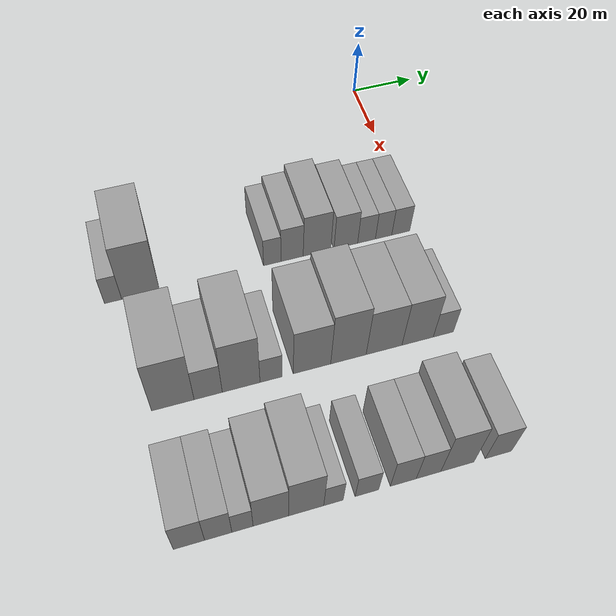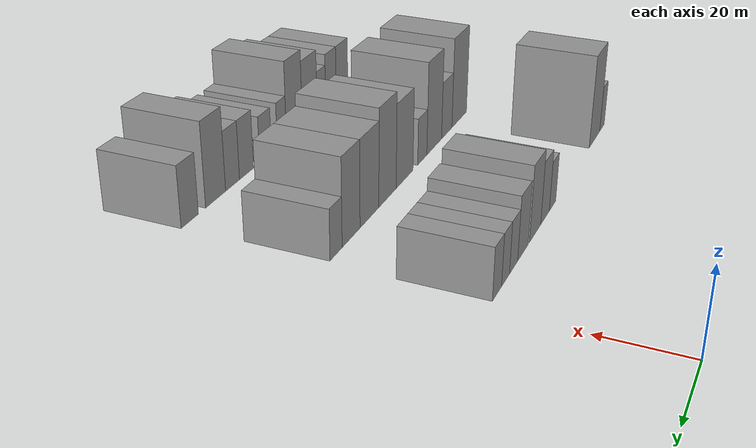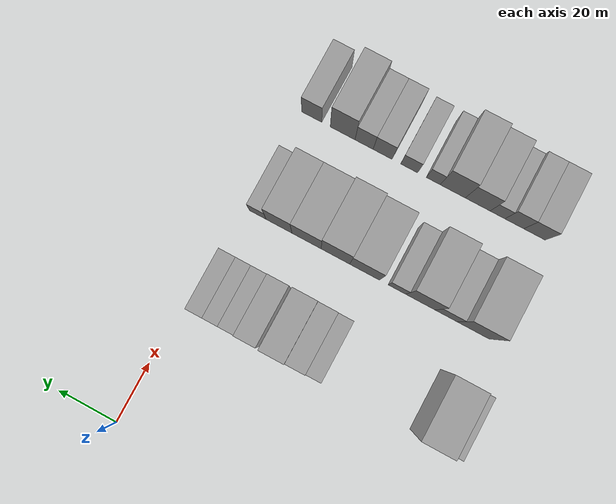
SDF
<sdf version="1.6">
 <world name="default">
  <model name="building_32">
   <static>1</static>
   <pose>50.0000 -91.1414 0 0.000000 0.000000 0.000000</pose>
   <link name="link">
    <pose>0 0 6.00 0 0 0</pose>
    <collision name="collision"><geometry><box><size>20.0000 4.8150 12.0000</size></box></geometry></collision>
    <visual name="visual">
     <cast_shadows>0</cast_shadows>
     <geometry><box><size>20.0000 4.8150 12.0000</size></box></geometry>
     <material>
      <script>
       <uri>model://grey_wall/materials/scripts</uri>
       <uri>model://grey_wall/materials/textures</uri>
       <name>vrc/grey_wall</name>
      </script>
     </material>
    </visual>
   </link>
  </model>
  <model name="building_33">
   <static>1</static>
   <pose>50.0000 -83.4060 0 0.000000 0.000000 0.000000</pose>
   <link name="link">
    <pose>0 0 12.00 0 0 0</pose>
    <collision name="collision"><geometry><box><size>20.0000 10.6557 24.0000</size></box></geometry></collision>
    <visual name="visual">
     <cast_shadows>0</cast_shadows>
     <geometry><box><size>20.0000 10.6557 24.0000</size></box></geometry>
     <material>
      <script>
       <uri>model://grey_wall/materials/scripts</uri>
       <uri>model://grey_wall/materials/textures</uri>
       <name>vrc/grey_wall</name>
      </script>
     </material>
    </visual>
   </link>
  </model>
  <model name="building_34">
   <static>1</static>
   <pose>50.0000 -45.3212 0 0.000000 0.000000 0.000000</pose>
   <link name="link">
    <pose>0 0 6.00 0 0 0</pose>
    <collision name="collision"><geometry><box><size>20.0000 5.1713 12.0000</size></box></geometry></collision>
    <visual name="visual">
     <cast_shadows>0</cast_shadows>
     <geometry><box><size>20.0000 5.1713 12.0000</size></box></geometry>
     <material>
      <script>
       <uri>model://grey_wall/materials/scripts</uri>
       <uri>model://grey_wall/materials/textures</uri>
       <name>vrc/grey_wall</name>
      </script>
     </material>
    </visual>
   </link>
  </model>
  <model name="building_35">
   <static>1</static>
   <pose>50.0000 -39.4127 0 0.000000 0.000000 0.000000</pose>
   <link name="link">
    <pose>0 0 7.50 0 0 0</pose>
    <collision name="collision"><geometry><box><size>20.0000 6.6456 15.0000</size></box></geometry></collision>
    <visual name="visual">
     <cast_shadows>0</cast_shadows>
     <geometry><box><size>20.0000 6.6456 15.0000</size></box></geometry>
     <material>
      <script>
       <uri>model://grey_wall/materials/scripts</uri>
       <uri>model://grey_wall/materials/textures</uri>
       <name>vrc/grey_wall</name>
      </script>
     </material>
    </visual>
   </link>
  </model>
  <model name="building_36">
   <static>1</static>
   <pose>50.0000 -31.9131 0 0.000000 0.000000 0.000000</pose>
   <link name="link">
    <pose>0 0 9.00 0 0 0</pose>
    <collision name="collision"><geometry><box><size>20.0000 8.3536 18.0000</size></box></geometry></collision>
    <visual name="visual">
     <cast_shadows>0</cast_shadows>
     <geometry><box><size>20.0000 8.3536 18.0000</size></box></geometry>
     <material>
      <script>
       <uri>model://grey_wall/materials/scripts</uri>
       <uri>model://grey_wall/materials/textures</uri>
       <name>vrc/grey_wall</name>
      </script>
     </material>
    </visual>
   </link>
  </model>
  <model name="building_37">
   <static>1</static>
   <pose>50.0000 -23.1117 0 0.000000 0.000000 0.000000</pose>
   <link name="link">
    <pose>0 0 7.50 0 0 0</pose>
    <collision name="collision"><geometry><box><size>20.0000 7.2491 15.0000</size></box></geometry></collision>
    <visual name="visual">
     <cast_shadows>0</cast_shadows>
     <geometry><box><size>20.0000 7.2491 15.0000</size></box></geometry>
     <material>
      <script>
       <uri>model://grey_wall/materials/scripts</uri>
       <uri>model://grey_wall/materials/textures</uri>
       <name>vrc/grey_wall</name>
      </script>
     </material>
    </visual>
   </link>
  </model>
  <model name="building_38">
   <static>1</static>
   <pose>50.0000 -16.7478 0 0.000000 0.000000 0.000000</pose>
   <link name="link">
    <pose>0 0 6.00 0 0 0</pose>
    <collision name="collision"><geometry><box><size>20.0000 5.4787 12.0000</size></box></geometry></collision>
    <visual name="visual">
     <cast_shadows>0</cast_shadows>
     <geometry><box><size>20.0000 5.4787 12.0000</size></box></geometry>
     <material>
      <script>
       <uri>model://grey_wall/materials/scripts</uri>
       <uri>model://grey_wall/materials/textures</uri>
       <name>vrc/grey_wall</name>
      </script>
     </material>
    </visual>
   </link>
  </model>
  <model name="building_39">
   <static>1</static>
   <pose>50.0000 -11.4639 0 0.000000 0.000000 0.000000</pose>
   <link name="link">
    <pose>0 0 6.00 0 0 0</pose>
    <collision name="collision"><geometry><box><size>20.0000 5.0892 12.0000</size></box></geometry></collision>
    <visual name="visual">
     <cast_shadows>0</cast_shadows>
     <geometry><box><size>20.0000 5.0892 12.0000</size></box></geometry>
     <material>
      <script>
       <uri>model://grey_wall/materials/scripts</uri>
       <uri>model://grey_wall/materials/textures</uri>
       <name>vrc/grey_wall</name>
      </script>
     </material>
    </visual>
   </link>
  </model>
  <model name="building_40">
   <static>1</static>
   <pose>50.0000 -6.0964 0 0.000000 0.000000 0.000000</pose>
   <link name="link">
    <pose>0 0 6.00 0 0 0</pose>
    <collision name="collision"><geometry><box><size>20.0000 5.6457 12.0000</size></box></geometry></collision>
    <visual name="visual">
     <cast_shadows>0</cast_shadows>
     <geometry><box><size>20.0000 5.6457 12.0000</size></box></geometry>
     <material>
      <script>
       <uri>model://grey_wall/materials/scripts</uri>
       <uri>model://grey_wall/materials/textures</uri>
       <name>vrc/grey_wall</name>
      </script>
     </material>
    </visual>
   </link>
  </model>
  <model name="building_110">
   <static>1</static>
   <pose>85.0000 -81.3385 0 0.000000 0.000000 0.000000</pose>
   <link name="link">
    <pose>0 0 12.00 0 0 0</pose>
    <collision name="collision"><geometry><box><size>20.0000 11.0445 24.0000</size></box></geometry></collision>
    <visual name="visual">
     <cast_shadows>0</cast_shadows>
     <geometry><box><size>20.0000 11.0445 24.0000</size></box></geometry>
     <material>
      <script>
       <uri>model://grey_wall/materials/scripts</uri>
       <uri>model://grey_wall/materials/textures</uri>
       <name>vrc/grey_wall</name>
      </script>
     </material>
    </visual>
   </link>
  </model>
  <model name="building_111">
   <static>1</static>
   <pose>85.0000 -72.1030 0 0.000000 0.000000 0.000000</pose>
   <link name="link">
    <pose>0 0 7.50 0 0 0</pose>
    <collision name="collision"><geometry><box><size>20.0000 7.4266 15.0000</size></box></geometry></collision>
    <visual name="visual">
     <cast_shadows>0</cast_shadows>
     <geometry><box><size>20.0000 7.4266 15.0000</size></box></geometry>
     <material>
      <script>
       <uri>model://grey_wall/materials/scripts</uri>
       <uri>model://grey_wall/materials/textures</uri>
       <name>vrc/grey_wall</name>
      </script>
     </material>
    </visual>
   </link>
  </model>
  <model name="building_112">
   <static>1</static>
   <pose>85.0000 -63.3589 0 0.000000 0.000000 0.000000</pose>
   <link name="link">
    <pose>0 0 12.00 0 0 0</pose>
    <collision name="collision"><geometry><box><size>20.0000 10.0616 24.0000</size></box></geometry></collision>
    <visual name="visual">
     <cast_shadows>0</cast_shadows>
     <geometry><box><size>20.0000 10.0616 24.0000</size></box></geometry>
     <material>
      <script>
       <uri>model://grey_wall/materials/scripts</uri>
       <uri>model://grey_wall/materials/textures</uri>
       <name>vrc/grey_wall</name>
      </script>
     </material>
    </visual>
   </link>
  </model>
  <model name="building_113">
   <static>1</static>
   <pose>85.0000 -55.3316 0 0.000000 0.000000 0.000000</pose>
   <link name="link">
    <pose>0 0 6.00 0 0 0</pose>
    <collision name="collision"><geometry><box><size>20.0000 5.9931 12.0000</size></box></geometry></collision>
    <visual name="visual">
     <cast_shadows>0</cast_shadows>
     <geometry><box><size>20.0000 5.9931 12.0000</size></box></geometry>
     <material>
      <script>
       <uri>model://grey_wall/materials/scripts</uri>
       <uri>model://grey_wall/materials/textures</uri>
       <name>vrc/grey_wall</name>
      </script>
     </material>
    </visual>
   </link>
  </model>
  <model name="building_114">
   <static>1</static>
   <pose>85.0000 -44.1902 0 0.000000 0.000000 0.000000</pose>
   <link name="link">
    <pose>0 0 10.50 0 0 0</pose>
    <collision name="collision"><geometry><box><size>20.0000 10.2897 21.0000</size></box></geometry></collision>
    <visual name="visual">
     <cast_shadows>0</cast_shadows>
     <geometry><box><size>20.0000 10.2897 21.0000</size></box></geometry>
     <material>
      <script>
       <uri>model://grey_wall/materials/scripts</uri>
       <uri>model://grey_wall/materials/textures</uri>
       <name>vrc/grey_wall</name>
      </script>
     </material>
    </visual>
   </link>
  </model>
  <model name="building_115">
   <static>1</static>
   <pose>85.0000 -34.1086 0 0.000000 0.000000 0.000000</pose>
   <link name="link">
    <pose>0 0 12.00 0 0 0</pose>
    <collision name="collision"><geometry><box><size>20.0000 9.8735 24.0000</size></box></geometry></collision>
    <visual name="visual">
     <cast_shadows>0</cast_shadows>
     <geometry><box><size>20.0000 9.8735 24.0000</size></box></geometry>
     <material>
      <script>
       <uri>model://grey_wall/materials/scripts</uri>
       <uri>model://grey_wall/materials/textures</uri>
       <name>vrc/grey_wall</name>
      </script>
     </material>
    </visual>
   </link>
  </model>
  <model name="building_116">
   <static>1</static>
   <pose>85.0000 -24.1066 0 0.000000 0.000000 0.000000</pose>
   <link name="link">
    <pose>0 0 10.50 0 0 0</pose>
    <collision name="collision"><geometry><box><size>20.0000 10.1305 21.0000</size></box></geometry></collision>
    <visual name="visual">
     <cast_shadows>0</cast_shadows>
     <geometry><box><size>20.0000 10.1305 21.0000</size></box></geometry>
     <material>
      <script>
       <uri>model://grey_wall/materials/scripts</uri>
       <uri>model://grey_wall/materials/textures</uri>
       <name>vrc/grey_wall</name>
      </script>
     </material>
    </visual>
   </link>
  </model>
  <model name="building_117">
   <static>1</static>
   <pose>85.0000 -14.5325 0 0.000000 0.000000 0.000000</pose>
   <link name="link">
    <pose>0 0 10.50 0 0 0</pose>
    <collision name="collision"><geometry><box><size>20.0000 9.0177 21.0000</size></box></geometry></collision>
    <visual name="visual">
     <cast_shadows>0</cast_shadows>
     <geometry><box><size>20.0000 9.0177 21.0000</size></box></geometry>
     <material>
      <script>
       <uri>model://grey_wall/materials/scripts</uri>
       <uri>model://grey_wall/materials/textures</uri>
       <name>vrc/grey_wall</name>
      </script>
     </material>
    </visual>
   </link>
  </model>
  <model name="building_118">
   <static>1</static>
   <pose>85.0000 -7.1090 0 0.000000 0.000000 0.000000</pose>
   <link name="link">
    <pose>0 0 6.00 0 0 0</pose>
    <collision name="collision"><geometry><box><size>20.0000 5.8294 12.0000</size></box></geometry></collision>
    <visual name="visual">
     <cast_shadows>0</cast_shadows>
     <geometry><box><size>20.0000 5.8294 12.0000</size></box></geometry>
     <material>
      <script>
       <uri>model://grey_wall/materials/scripts</uri>
       <uri>model://grey_wall/materials/textures</uri>
       <name>vrc/grey_wall</name>
      </script>
     </material>
    </visual>
   </link>
  </model>
  <model name="building_182">
   <static>1</static>
   <pose>120.0000 -84.6310 0 0.000000 0.000000 0.000000</pose>
   <link name="link">
    <pose>0 0 7.50 0 0 0</pose>
    <collision name="collision"><geometry><box><size>20.0000 7.3683 15.0000</size></box></geometry></collision>
    <visual name="visual">
     <cast_shadows>0</cast_shadows>
     <geometry><box><size>20.0000 7.3683 15.0000</size></box></geometry>
     <material>
      <script>
       <uri>model://grey_wall/materials/scripts</uri>
       <uri>model://grey_wall/materials/textures</uri>
       <name>vrc/grey_wall</name>
      </script>
     </material>
    </visual>
   </link>
  </model>
  <model name="building_183">
   <static>1</static>
   <pose>120.0000 -77.7113 0 0.000000 0.000000 0.000000</pose>
   <link name="link">
    <pose>0 0 7.50 0 0 0</pose>
    <collision name="collision"><geometry><box><size>20.0000 6.4711 15.0000</size></box></geometry></collision>
    <visual name="visual">
     <cast_shadows>0</cast_shadows>
     <geometry><box><size>20.0000 6.4711 15.0000</size></box></geometry>
     <material>
      <script>
       <uri>model://grey_wall/materials/scripts</uri>
       <uri>model://grey_wall/materials/textures</uri>
       <name>vrc/grey_wall</name>
      </script>
     </material>
    </visual>
   </link>
  </model>
  <model name="building_184">
   <static>1</static>
   <pose>120.0000 -71.9233 0 0.000000 0.000000 0.000000</pose>
   <link name="link">
    <pose>0 0 6.00 0 0 0</pose>
    <collision name="collision"><geometry><box><size>20.0000 5.1049 12.0000</size></box></geometry></collision>
    <visual name="visual">
     <cast_shadows>0</cast_shadows>
     <geometry><box><size>20.0000 5.1049 12.0000</size></box></geometry>
     <material>
      <script>
       <uri>model://grey_wall/materials/scripts</uri>
       <uri>model://grey_wall/materials/textures</uri>
       <name>vrc/grey_wall</name>
      </script>
     </material>
    </visual>
   </link>
  </model>
  <model name="building_185">
   <static>1</static>
   <pose>120.0000 -65.0816 0 0.000000 0.000000 0.000000</pose>
   <link name="link">
    <pose>0 0 9.00 0 0 0</pose>
    <collision name="collision"><geometry><box><size>20.0000 8.5783 18.0000</size></box></geometry></collision>
    <visual name="visual">
     <cast_shadows>0</cast_shadows>
     <geometry><box><size>20.0000 8.5783 18.0000</size></box></geometry>
     <material>
      <script>
       <uri>model://grey_wall/materials/scripts</uri>
       <uri>model://grey_wall/materials/textures</uri>
       <name>vrc/grey_wall</name>
      </script>
     </material>
    </visual>
   </link>
  </model>
  <model name="building_186">
   <static>1</static>
   <pose>120.0000 -56.4426 0 0.000000 0.000000 0.000000</pose>
   <link name="link">
    <pose>0 0 10.50 0 0 0</pose>
    <collision name="collision"><geometry><box><size>20.0000 8.6998 21.0000</size></box></geometry></collision>
    <visual name="visual">
     <cast_shadows>0</cast_shadows>
     <geometry><box><size>20.0000 8.6998 21.0000</size></box></geometry>
     <material>
      <script>
       <uri>model://grey_wall/materials/scripts</uri>
       <uri>model://grey_wall/materials/textures</uri>
       <name>vrc/grey_wall</name>
      </script>
     </material>
    </visual>
   </link>
  </model>
  <model name="building_187">
   <static>1</static>
   <pose>120.0000 -49.6678 0 0.000000 0.000000 0.000000</pose>
   <link name="link">
    <pose>0 0 6.00 0 0 0</pose>
    <collision name="collision"><geometry><box><size>20.0000 4.8497 12.0000</size></box></geometry></collision>
    <visual name="visual">
     <cast_shadows>0</cast_shadows>
     <geometry><box><size>20.0000 4.8497 12.0000</size></box></geometry>
     <material>
      <script>
       <uri>model://grey_wall/materials/scripts</uri>
       <uri>model://grey_wall/materials/textures</uri>
       <name>vrc/grey_wall</name>
      </script>
     </material>
    </visual>
   </link>
  </model>
  <model name="building_188">
   <static>1</static>
   <pose>120.0000 -41.2669 0 0.000000 0.000000 0.000000</pose>
   <link name="link">
    <pose>0 0 6.00 0 0 0</pose>
    <collision name="collision"><geometry><box><size>20.0000 5.9521 12.0000</size></box></geometry></collision>
    <visual name="visual">
     <cast_shadows>0</cast_shadows>
     <geometry><box><size>20.0000 5.9521 12.0000</size></box></geometry>
     <material>
      <script>
       <uri>model://grey_wall/materials/scripts</uri>
       <uri>model://grey_wall/materials/textures</uri>
       <name>vrc/grey_wall</name>
      </script>
     </material>
    </visual>
   </link>
  </model>
  <model name="building_189">
   <static>1</static>
   <pose>120.0000 -31.9701 0 0.000000 0.000000 0.000000</pose>
   <link name="link">
    <pose>0 0 7.50 0 0 0</pose>
    <collision name="collision"><geometry><box><size>20.0000 6.6415 15.0000</size></box></geometry></collision>
    <visual name="visual">
     <cast_shadows>0</cast_shadows>
     <geometry><box><size>20.0000 6.6415 15.0000</size></box></geometry>
     <material>
      <script>
       <uri>model://grey_wall/materials/scripts</uri>
       <uri>model://grey_wall/materials/textures</uri>
       <name>vrc/grey_wall</name>
      </script>
     </material>
    </visual>
   </link>
  </model>
  <model name="building_190">
   <static>1</static>
   <pose>120.0000 -25.4670 0 0.000000 0.000000 0.000000</pose>
   <link name="link">
    <pose>0 0 7.50 0 0 0</pose>
    <collision name="collision"><geometry><box><size>20.0000 6.3647 15.0000</size></box></geometry></collision>
    <visual name="visual">
     <cast_shadows>0</cast_shadows>
     <geometry><box><size>20.0000 6.3647 15.0000</size></box></geometry>
     <material>
      <script>
       <uri>model://grey_wall/materials/scripts</uri>
       <uri>model://grey_wall/materials/textures</uri>
       <name>vrc/grey_wall</name>
      </script>
     </material>
    </visual>
   </link>
  </model>
  <model name="building_191">
   <static>1</static>
   <pose>120.0000 -17.9160 0 0.000000 0.000000 0.000000</pose>
   <link name="link">
    <pose>0 0 10.50 0 0 0</pose>
    <collision name="collision"><geometry><box><size>20.0000 8.7374 21.0000</size></box></geometry></collision>
    <visual name="visual">
     <cast_shadows>0</cast_shadows>
     <geometry><box><size>20.0000 8.7374 21.0000</size></box></geometry>
     <material>
      <script>
       <uri>model://grey_wall/materials/scripts</uri>
       <uri>model://grey_wall/materials/textures</uri>
       <name>vrc/grey_wall</name>
      </script>
     </material>
    </visual>
   </link>
  </model>
  <model name="building_192">
   <static>1</static>
   <pose>120.0000 -7.0255 0 0.000000 0.000000 0.000000</pose>
   <link name="link">
    <pose>0 0 7.50 0 0 0</pose>
    <collision name="collision"><geometry><box><size>20.0000 7.0435 15.0000</size></box></geometry></collision>
    <visual name="visual">
     <cast_shadows>0</cast_shadows>
     <geometry><box><size>20.0000 7.0435 15.0000</size></box></geometry>
     <material>
      <script>
       <uri>model://grey_wall/materials/scripts</uri>
       <uri>model://grey_wall/materials/textures</uri>
       <name>vrc/grey_wall</name>
      </script>
     </material>
    </visual>
   </link>
  </model>
 </world>
</sdf>
